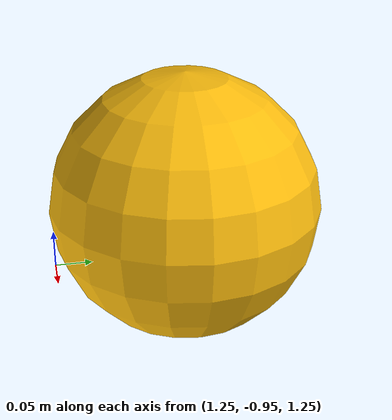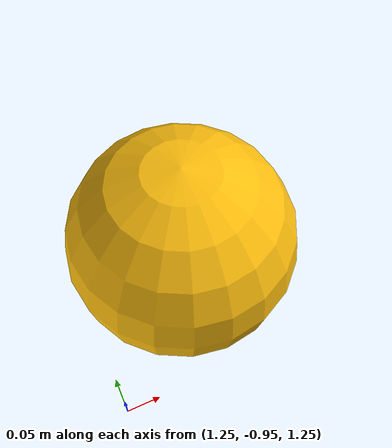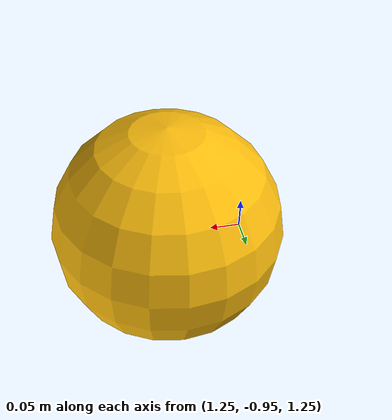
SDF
<?xml version="1.0" ?>
<sdf version="1.9">
  <world name="green_solar_world">
   <gravity>0 0 0</gravity>
    <!-- Physics settings -->
    <physics name="default_physics" type="ignored">
      <max_step_size>0.001</max_step_size>
      <real_time_factor>1.0</real_time_factor>
    </physics>

    <!-- Sky/background settings -->
    <scene>
      <ambient>0.55 0.65 0.55 1</ambient>
      <background>0.55 0.75 0.95 1</background>
      <shadows>true</shadows>
    </scene>

    <!-- Directional sunlight -->
    <light type="directional" name="sunlight">
      <cast_shadows>true</cast_shadows>
      <pose>0 0 10 0 0 0</pose>
      <diffuse>1.0 0.92 0.65 1</diffuse>
      <specular>0.5 0.5 0.4 1</specular>
      <attenuation>
        <range>100</range>
        <constant>0.9</constant>
        <linear>0.01</linear>
        <quadratic>0.001</quadratic>
      </attenuation>
      <direction>-0.6 -0.4 -1</direction>
    </light>

    <!-- Green ground plane -->
    <model name="green_ground">
      <static>true</static>
      <link name="ground_link">
        <collision name="ground_collision">
          <geometry>
            <plane>
              <normal>0 0 1</normal>
              <size>20 20</size>
            </plane>
          </geometry>
        </collision>

        <visual name="ground_visual">
          <geometry>
            <plane>
              <normal>0 0 1</normal>
              <size>20 20</size>
            </plane>
          </geometry>
          <material>
            <ambient>0.16 0.42 0.16 1</ambient>
            <diffuse>0.22 0.62 0.22 1</diffuse>
            <specular>0.03 0.05 0.03 1</specular>
          </material>
        </visual>
      </link>
    </model>

    <!-- Visible sun marker controlled by Gazebo pose commands -->
    <model name="moving_sun">
      <static>true</static>
      <pose>1.4 -0.8 1.4 0 0 0</pose>

      <link name="sun_link">
        <visual name="sun_visual">
          <geometry>
            <sphere>
              <radius>0.16</radius>
            </sphere>
          </geometry>
          <material>
            <ambient>1.0 0.75 0.05 1</ambient>
            <diffuse>1.0 0.75 0.05 1</diffuse>
            <emissive>1.0 0.65 0.0 1</emissive>
          </material>
        </visual>
      </link>
    </model>

  </world>
</sdf>
